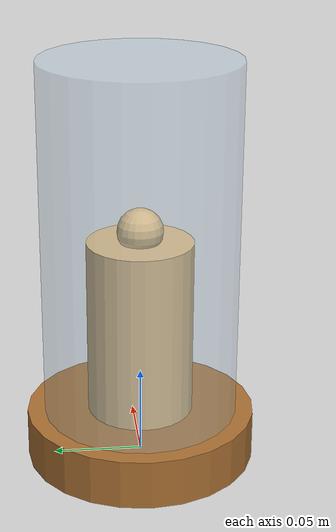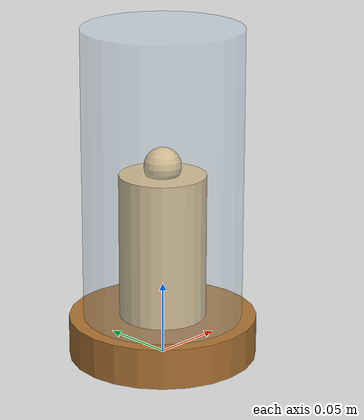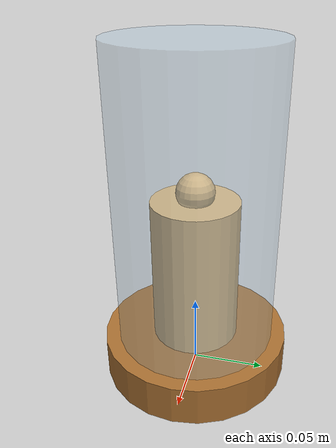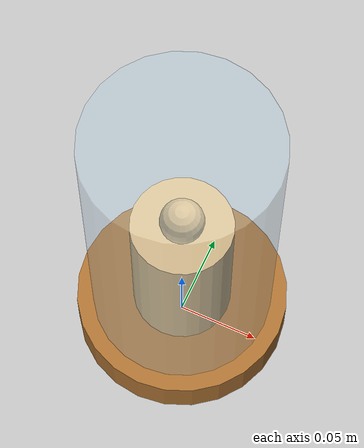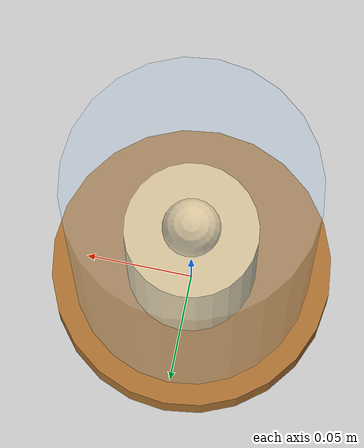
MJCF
<mujoco model="glass_hurricane_holder">
  <default>
    <geom condim="4" friction="0.85 0.01 0.001"/>
  </default>
  <asset>
    <material name="smoked_glass" rgba="0.62 0.78 0.90 0.28"/>
    <material name="warm_wax" rgba="0.95 0.78 0.52 1.0"/>
    <material name="brass_base" rgba="0.68 0.45 0.20 1.0"/>
  </asset>
  <worldbody>
    <body name="glass_hurricane_holder_body" pos="0 0 0">
      <geom
        name="hurricane_glass_shell"
        type="cylinder"
        size="0.055 0.105"
        pos="0 0 0.125"
        mass="0.22"
        material="smoked_glass"
      />
      <geom
        name="hurricane_brass_foot"
        type="cylinder"
        size="0.065 0.014"
        pos="0 0 0.014"
        mass="0.16"
        material="brass_base"
      />
      <geom
        name="hurricane_candle_visual"
        type="cylinder"
        size="0.030 0.055"
        pos="0 0 0.074"
        contype="0"
        conaffinity="0"
        mass="0.001"
        material="warm_wax"
      />
      <geom
        name="hurricane_candle_tip"
        type="sphere"
        size="0.013"
        pos="0 0 0.135"
        contype="0"
        conaffinity="0"
        mass="0.001"
        material="warm_wax"
      />
    </body>
  </worldbody>
</mujoco>
